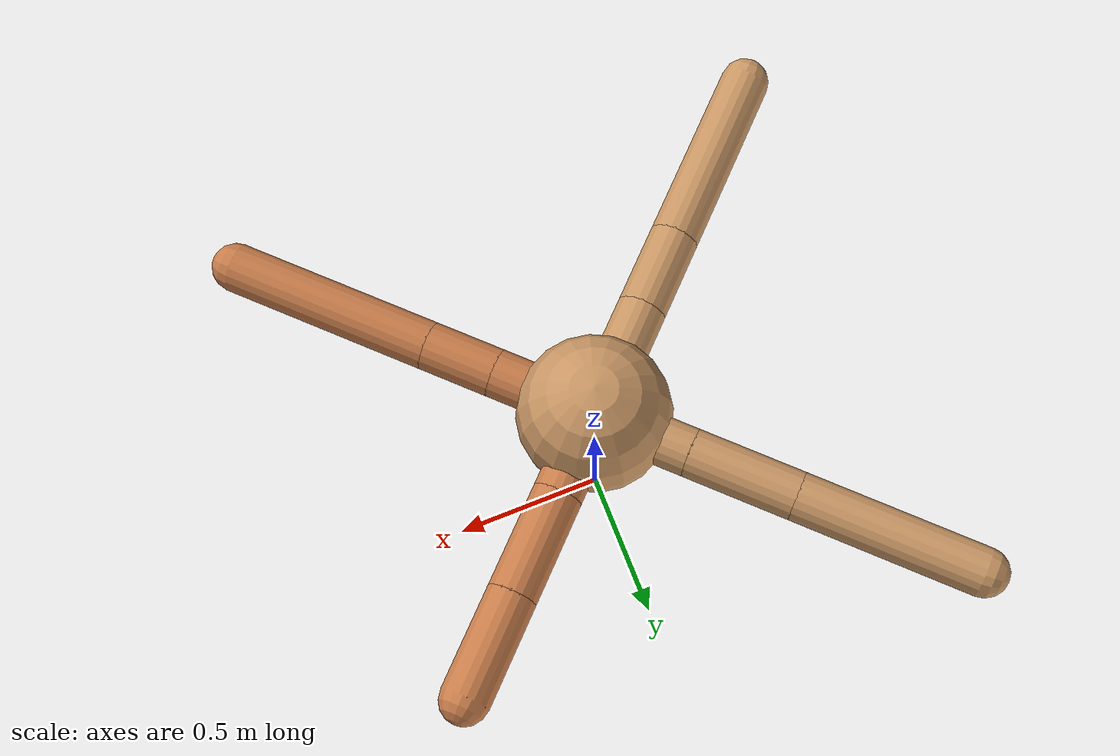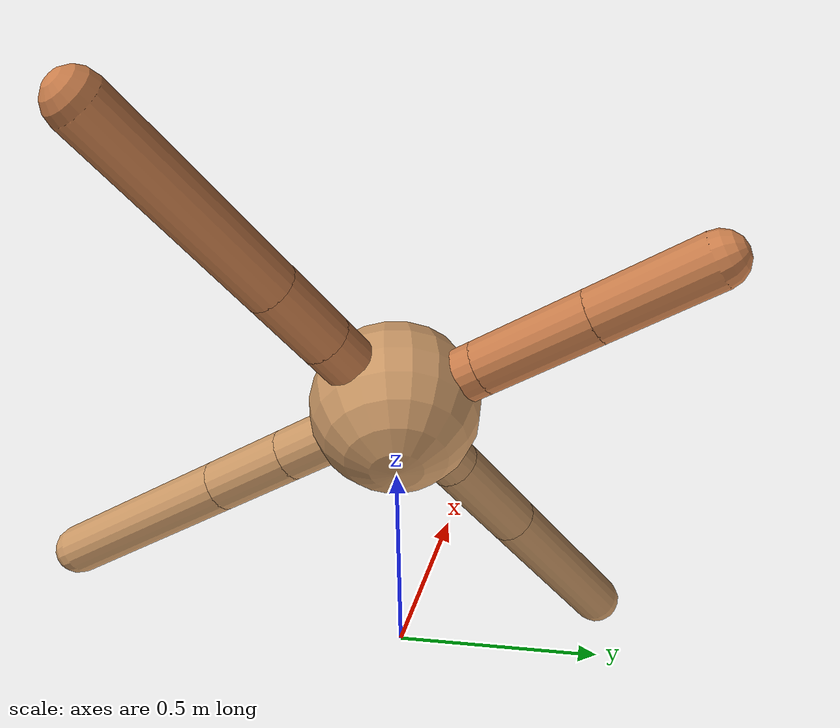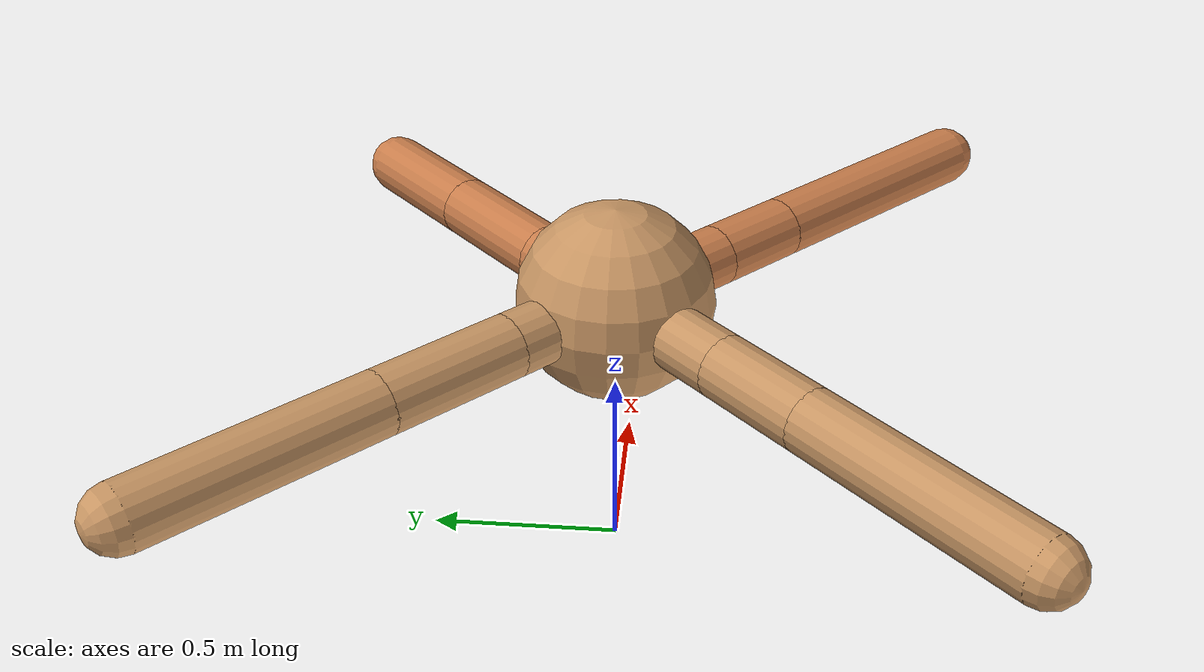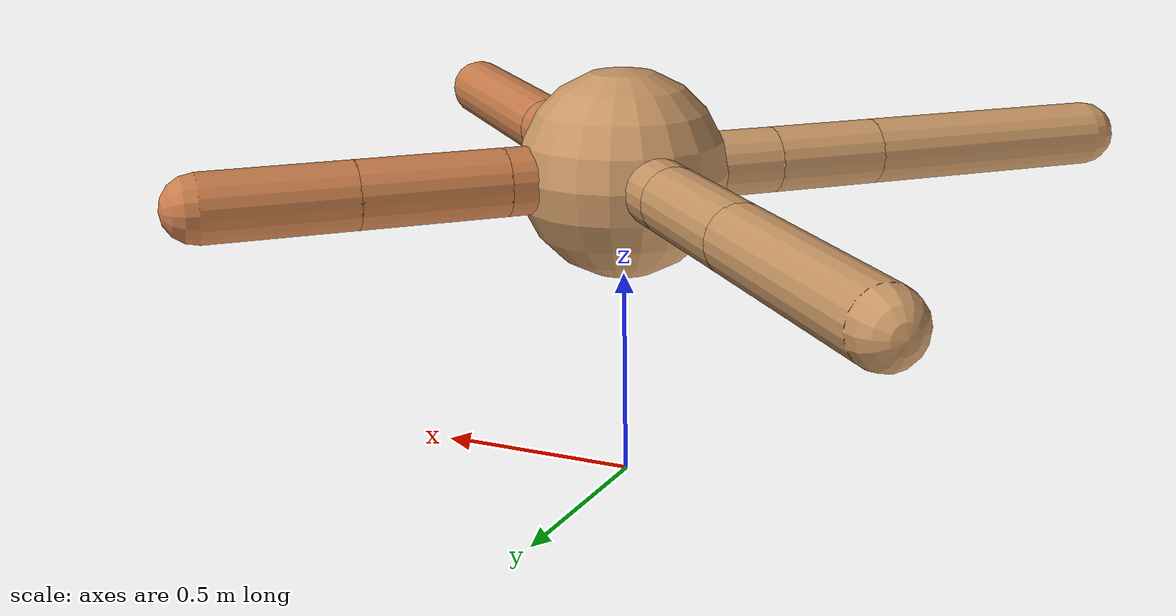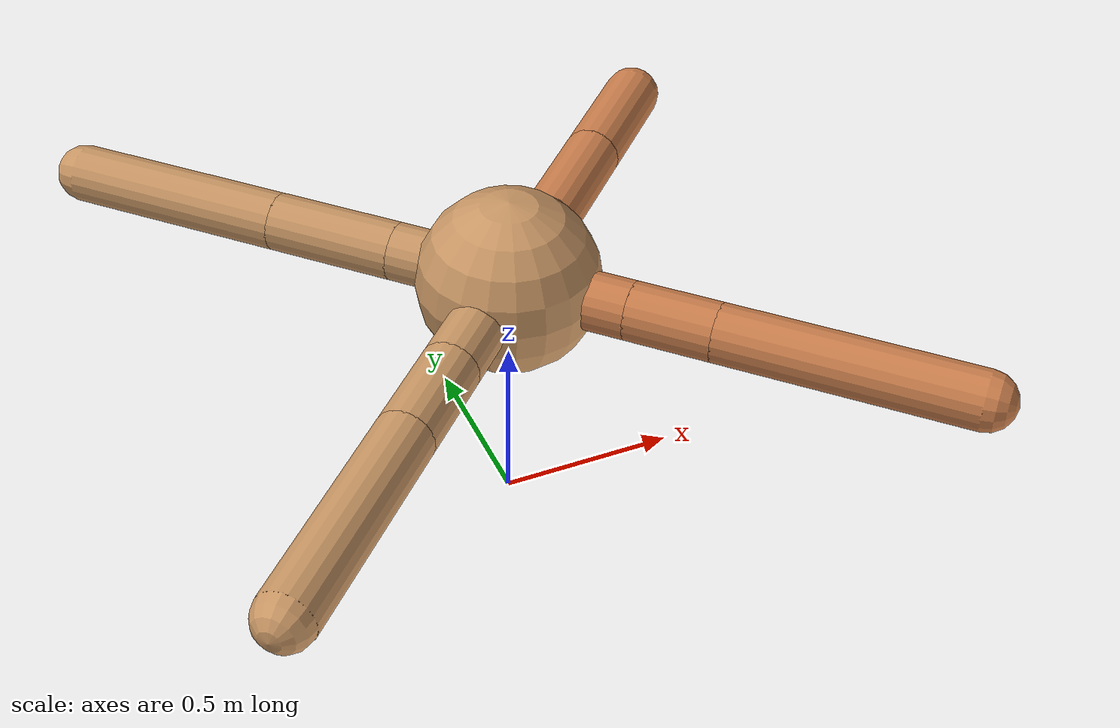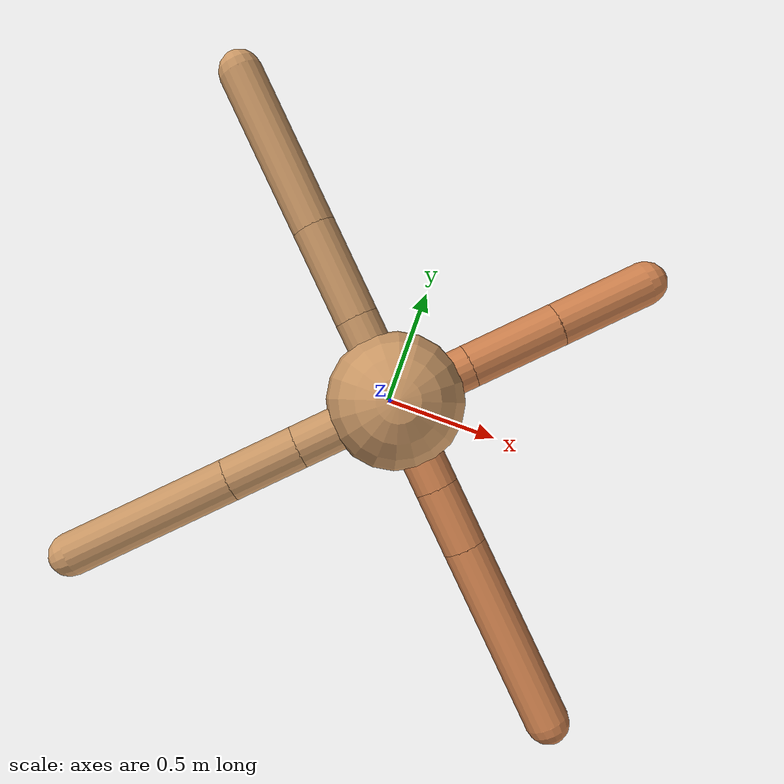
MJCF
<mujoco model="ant">
  <compiler angle="degree" coordinate="local" inertiafromgeom="true" />
  <option integrator="RK4" timestep="0.01" />
  <custom>
    <numeric data="0.0 0.0 0.55 1.0 0.0 0.0 0.0 0.0 1.0 0.0 -1.0 0.0 -1.0 0.0 1.0" name="init_qpos" />
  </custom>
  <default>
    <joint armature="1" damping="1" limited="true" />
    <geom conaffinity="0" condim="3" density="5.0" friction="1.5 0.1 0.1" margin="0.01" rgba="0.8 0.6 0.4 1" />
  </default>
  <worldbody>
    <body name="torso" pos="0 0 0.75">
      <geom name="torso_geom" pos="0 0 0" size="0.25" type="sphere" />

      <body name="front_left_leg" pos="0 0 0">
        <geom fromto="0.0 0.0 0.0 0.20525622796364396 0.20525622796364396 0.0" name="aux_1_geom" size="0.08" type="capsule" rgba=".8 .5 .3 1" />
        <body name="aux_1" pos="0.20525622796364396 0.20525622796364396 0.0">
          <joint axis="0 0 1" name="hip_1" pos="0.0 0.0 0.0" range="-40 40" type="hinge" />
          <geom fromto="0.0 0.0 0.0 0.24358983044140012 0.24358983044140012 0.0" name="left_leg_geom" size="0.08" type="capsule" rgba=".8 .5 .3 1" />
          <body pos="0.24358983044140012 0.24358983044140012 0.0" name="front_left_foot">
            <joint axis="-1 1 0" name="ankle_1" pos="0.0 0.0 0.0" range="30 100" type="hinge" />
            <geom fromto="0.0 0.0 0.0 0.24461842800682346 0.24461842800682346 0.0" name="left_ankle_geom" size="0.08" type="capsule" rgba=".8 .5 .3 1" />
          </body>
        </body>
      </body>
      <body name="front_right_leg" pos="0 0 0">
        <geom fromto="0.0 0.0 0.0 -0.23153012583297863 0.23153012583297863 0.0" name="aux_2_geom" size="0.08" type="capsule" />
        <body name="aux_2" pos="-0.23153012583297863 0.23153012583297863 0.0">
          <joint axis="0 0 1" name="hip_2" pos="0.0 0.0 0.0" range="-40 40" type="hinge" />
          <geom fromto="0.0 0.0 0.0 -0.2524128528686954 0.2524128528686954 0.0" name="right_leg_geom" size="0.08" type="capsule" />
          <body pos="-0.2524128528686954 0.2524128528686954 0.0" name="front_right_foot">
            <joint axis="1 1 0" name="ankle_2" pos="0.0 0.0 0.0" range="-100 -30" type="hinge" />
            <geom fromto="0.0 0.0 0.0 -0.43312801845489945 0.43312801845489945 0.0" name="right_ankle_geom" size="0.08" type="capsule" />
          </body>
        </body>
      </body>
      <body name="left_back_leg" pos="0 0 0">
        <geom fromto="0.0 0.0 0.0 -0.2721501841877393 -0.2721501841877393 0.0" name="aux_3_geom" size="0.08" type="capsule" />
        <body name="aux_3" pos="-0.2721501841877393 -0.2721501841877393 0.0">
          <joint axis="0 0 1" name="hip_3" pos="0.0 0.0 0.0" range="-40 40" type="hinge" />
          <geom fromto="0.0 0.0 0.0 -0.19234404996128807 -0.19234404996128807 0.0" name="back_leg_geom" size="0.08" type="capsule" />
          <body pos="-0.19234404996128807 -0.19234404996128807 0.0" name="left_back_foot">
            <joint axis="-1 1 0" name="ankle_3" pos="0.0 0.0 0.0" range="-100 -30" type="hinge" />
            <geom fromto="0.0 0.0 0.0 -0.44076637877890584 -0.44076637877890584 0.0" name="third_ankle_geom" size="0.08" type="capsule" />
          </body>
        </body>
      </body>
      <body name="right_back_leg" pos="0 0 0">
        <geom fromto="0.0 0.0 0.0 0.24110664915443653 -0.24110664915443653 0.0" name="aux_4_geom" size="0.08" type="capsule" rgba=".8 .5 .3 1" />
        <body name="aux_4" pos="0.24110664915443653 -0.24110664915443653 0.0">
          <joint axis="0 0 1" name="hip_4" pos="0.0 0.0 0.0" range="-40 40" type="hinge" />
          <geom fromto="0.0 0.0 0.0 0.1655961557874516 -0.1655961557874516 0.0" name="rightback_leg_geom" size="0.08" type="capsule" rgba=".8 .5 .3 1" />
          <body pos="0.1655961557874516 -0.1655961557874516 0.0" name="right_back_foot">
            <joint axis="1 1 0" name="ankle_4" pos="0.0 0.0 0.0" range="30 100" type="hinge" />
            <geom fromto="0.0 0.0 0.0 0.4867521069294323 -0.4867521069294323 0.0" name="fourth_ankle_geom" size="0.08" type="capsule" rgba=".8 .5 .3 1" />
          </body>
        </body>
      </body>
    </body>
  </worldbody>
  <actuator>
    <motor ctrllimited="true" ctrlrange="-1.0 1.0" joint="hip_4" gear="150" />
    <motor ctrllimited="true" ctrlrange="-1.0 1.0" joint="ankle_4" gear="150" />
    <motor ctrllimited="true" ctrlrange="-1.0 1.0" joint="hip_1" gear="150" />
    <motor ctrllimited="true" ctrlrange="-1.0 1.0" joint="ankle_1" gear="150" />
    <motor ctrllimited="true" ctrlrange="-1.0 1.0" joint="hip_2" gear="150" />
    <motor ctrllimited="true" ctrlrange="-1.0 1.0" joint="ankle_2" gear="150" />
    <motor ctrllimited="true" ctrlrange="-1.0 1.0" joint="hip_3" gear="150" />
    <motor ctrllimited="true" ctrlrange="-1.0 1.0" joint="ankle_3" gear="150" />
  </actuator>
</mujoco>
